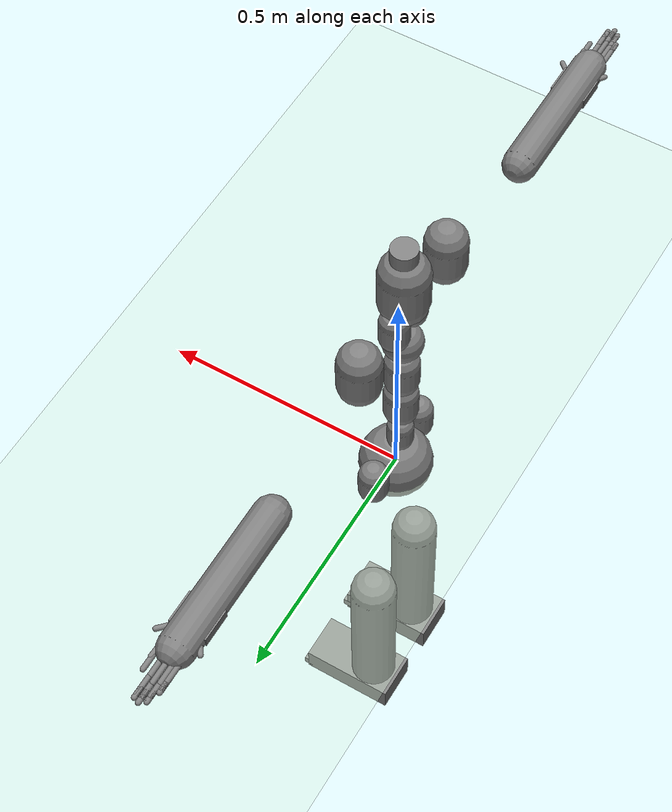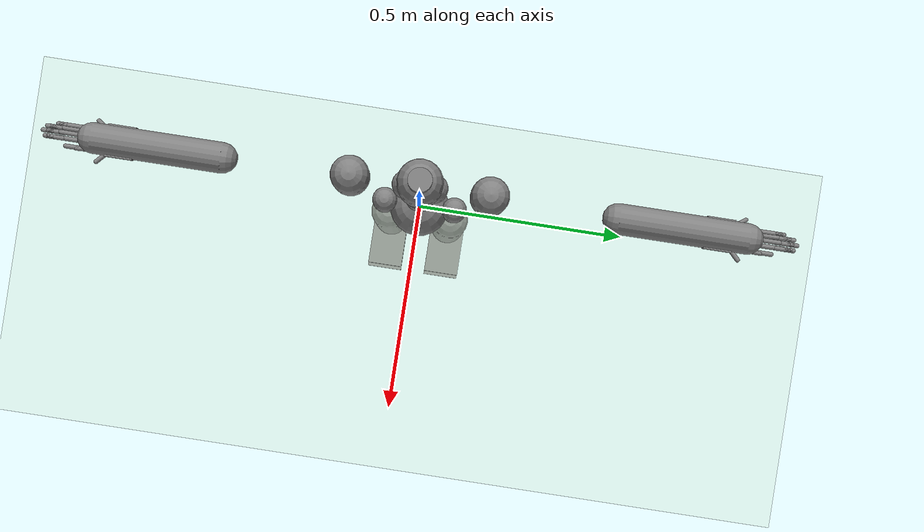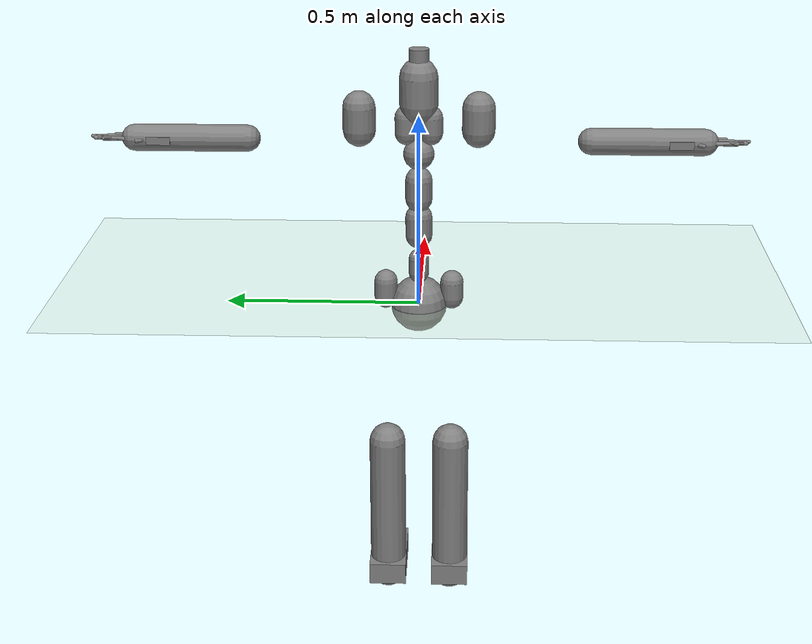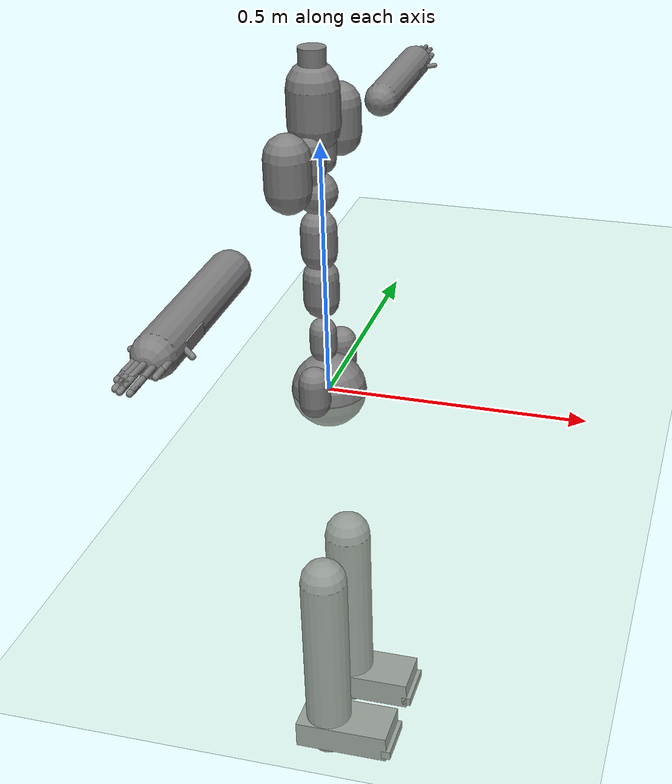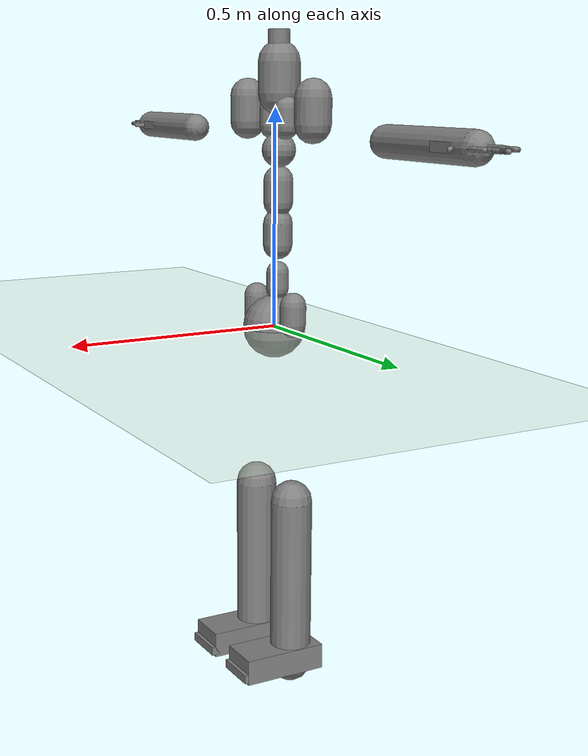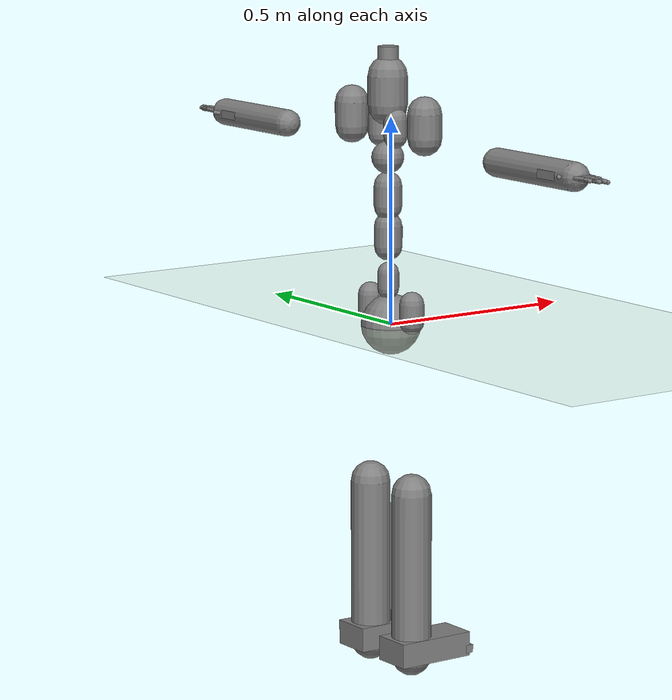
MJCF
<?xml version="1.0" ?>
<mujoco model="humanoid">
  <compiler coordinate="local"/>
  <statistic extent="2" center="0 0 1"/>
  <option timestep="0.00555"/>
  <default>
    <motor ctrlrange="-1 1" ctrllimited="true"/>
    <geom type="capsule" condim="1" friction="1.0 0.05 0.05" solimp=".9 .99 .003" solref=".015 1"/>
    <joint type="hinge" damping="0.1" stiffness="5" armature=".007" limited="true" solimplimit="0 .99 .01"/>
    <site size=".04" group="3"/>
  </default>
  <asset>
    <texture type="skybox" builtin="gradient" rgb1=".4 .5 .6" rgb2="0 0 0" width="100" height="100"/>
    <texture builtin="flat" height="1278" mark="cross" markrgb="1 1 1" name="texgeom" random="0.01" rgb1="0.8 0.6 0.4" rgb2="0.8 0.6 0.4" type="cube" width="127"/>
    <texture builtin="checker" height="100" name="texplane" rgb1="0 0 0" rgb2="0.8 0.8 0.8" type="2d" width="100"/>
    <material name="MatPlane" reflectance="0.5" shininess="1" specular="1" texrepeat="60 60" texture="texplane"/>
    <material name="geom" texture="texgeom" texuniform="true"/>
  </asset>
  <worldbody>
    <light cutoff="100" diffuse="1 1 1" dir="-0 0 -1.3" directional="true" exponent="1" pos="0 0 1.3" specular=".1 .1 .1"/>
    <geom conaffinity="1" condim="3" name="floor" pos="0 0 0" rgba="0.8 0.9 0.8 1" size="100 100 .2" type="plane" material="MatPlane"/>
    <body name="pHipOrigin" pos="0 0 0">
      <freejoint name="pHipOrigin"/>
      <geom type="sphere" contype="1" conaffinity="1" density="4629.6296296296305" size="0.07289" pos="0.0000 0.0000 -0.0000"/>
      <body name="jL5S1" pos="-0.00821389 0 0.07392483">
        <geom type="capsule" contype="1" conaffinity="1" density="1000" fromto="0 0 0.01488 0 0 0.05207" size="0.02603"/>
        <joint name="jL5S1_x" type="hinge" pos="0 0 0" axis="1 0 0" stiffness="500" damping="500" armature="0.02" range="-180.0000 180.0000"/>
        <joint name="jL5S1_y" type="hinge" pos="0 0 0" axis="0 1 0" stiffness="500" damping="500" armature="0.02" range="-180.0000 180.0000"/>
        <joint name="jL5S1_z" type="hinge" pos="0 0 0" axis="0 0 1" stiffness="500" damping="500" armature="0.02" range="-180.0000 180.0000"/>
        <body name="jL4L3" pos="0 0 0.09716501">
          <geom type="capsule" contype="1" conaffinity="1" density="1000" fromto="0 0 0.01943 0 0 0.06802" size="0.03401"/>
          <joint name="jL4L3_x" type="hinge" pos="0 0 0" axis="1 0 0" stiffness="500" damping="500" armature="0.02" range="-180.0000 180.0000"/>
          <joint name="jL4L3_y" type="hinge" pos="0 0 0" axis="0 1 0" stiffness="500" damping="500" armature="0.02" range="-180.0000 180.0000"/>
          <joint name="jL4L3_z" type="hinge" pos="0 0 0" axis="0 0 1" stiffness="500" damping="500" armature="0.02" range="-180.0000 180.0000"/>
          <body name="jL1T12" pos="-0.00075216 0 0.09749371">
            <geom type="capsule" contype="1" conaffinity="1" density="1000" fromto="0 0 0.01950 0 0 0.06825" size="0.03412"/>
            <joint name="jL1T12_x" type="hinge" pos="0 0 0" axis="1 0 0" stiffness="500" damping="500" armature="0.02" range="-180.0000 180.0000"/>
            <joint name="jL1T12_y" type="hinge" pos="0 0 0" axis="0 1 0" stiffness="500" damping="500" armature="0.02" range="-180.0000 180.0000"/>
            <joint name="jL1T12_z" type="hinge" pos="0 0 0" axis="0 0 1" stiffness="500" damping="500" armature="0.02" range="-180.0000 180.0000"/>
            <body name="jT9T8" pos="-0.00075378 0 0.09751337">
              <geom type="sphere" contype="1" conaffinity="1" density="1000" size="0.03901" pos="0.000 0.0000 0.039007"/>
              <joint name="jT9T8_x" type="hinge" pos="0 0 0" axis="1 0 0" stiffness="500" damping="500" armature="0.02" range="-180.0000 180.0000"/>
              <joint name="jT9T8_y" type="hinge" pos="0 0 0" axis="0 1 0" stiffness="500" damping="500" armature="0.02" range="-180.0000 180.0000"/>
              <joint name="jT9T8_z" type="hinge" pos="0 0 0" axis="0 0 1" stiffness="500" damping="500" armature="0.02" range="-180.0000 180.0000"/>
              <body name="jT1C7" pos="0 0 0.13721299">
                <geom type="capsule" contype="1" conaffinity="1" density="1000" fromto="0 0 0.02744 0 0 0.09605" size="0.04802"/>
                <joint name="jT1C7_x" type="hinge" pos="0 0 0" axis="1 0 0" stiffness="500" damping="500" armature="0.02" range="-180.0000 180.0000"/>
                <joint name="jT1C7_y" type="hinge" pos="0 0 0" axis="0 1 0" stiffness="500" damping="500" armature="0.02" range="-180.0000 180.0000"/>
                <joint name="jT1C7_z" type="hinge" pos="0 0 0" axis="0 0 1" stiffness="500" damping="500" armature="0.02" range="-180.0000 180.0000"/>
                <body name="jC1Head" pos="0.00098253 0 0.08328238">
                  <geom type="cylinder" contype="1" conaffinity="1" density="1000" fromto="0 0 0 0 0 0.08329" size="0.02499"/>
                  <joint name="jC1Head_x" type="hinge" pos="0 0 0" axis="1 0 0" stiffness="500" damping="500" armature="0.02" range="-180.0000 180.0000"/>
                  <joint name="jC1Head_y" type="hinge" pos="0 0 0" axis="0 1 0" stiffness="500" damping="500" armature="0.02" range="-180.0000 180.0000"/>
                  <joint name="jC1Head_z" type="hinge" pos="0 0 0" axis="0 0 1" stiffness="500" damping="500" armature="0.02" range="-180.0000 180.0000"/>
                </body>
              </body>
              <body name="jRightT4Shoulder" pos="0 -0.03105658 0.07572276">
                <geom type="capsule" contype="1" conaffinity="1" density="1000" fromto="0 0 0.01637 0 0 0.05729" size="0.02865"/>
                <joint name="jRightT4Shoulder_x" type="hinge" pos="0 0 0" axis="1 0 0" stiffness="500" damping="500" armature="0.02" range="-180.0000 180.0000"/>
                <joint name="jRightT4Shoulder_y" type="hinge" pos="0 0 0" axis="0 1 0" stiffness="500" damping="500" armature="0.02" range="-180.0000 180.0000"/>
                <joint name="jRightT4Shoulder_z" type="hinge" pos="0 0 0" axis="0 0 1" stiffness="500" damping="500" armature="0.02" range="-180.0000 180.0000"/>
                <body name="jRightShoulder" pos="0 -0.11724377 0">
                  <geom type="capsule" contype="1" conaffinity="1" density="1000" fromto="0 0 0.02345 0 0 0.08207" size="0.04104"/>
                  <joint name="jRightShoulder_x" type="hinge" pos="0 0 0" axis="1 0 0" stiffness="500" damping="500" armature="0.02" range="-180.0000 180.0000"/>
                  <joint name="jRightShoulder_y" type="hinge" pos="0 0 0" axis="0 1 0" stiffness="500" damping="500" armature="0.02" range="-180.0000 180.0000"/>
                  <joint name="jRightShoulder_z" type="hinge" pos="0 0 0" axis="0 0 1" stiffness="500" damping="500" armature="0.02" range="-180.0000 180.0000"/>
                  <body name="jRightElbow" pos="0 -0.27950010 0">
                    <geom type="capsule" contype="1" conaffinity="1" density="1000" fromto="0 0 0 0.00000000 -0.27950010 0.00000000" size="0.03354"/>
                    <joint name="jRightElbow_x" type="hinge" pos="0 0 0" axis="1 0 0" stiffness="500" damping="500" armature="0.02" range="-180.0000 180.0000"/>
                    <joint name="jRightElbow_y" type="hinge" pos="0 0 0" axis="0 1 0" stiffness="500" damping="500" armature="0.02" range="-180.0000 180.0000"/>
                    <joint name="jRightElbow_z" type="hinge" pos="0 0 0" axis="0 0 1" stiffness="500" damping="500" armature="0.02" range="-180.0000 180.0000"/>
                    <body name="jRightWrist" pos="0.00008815 -0.21901459 0">
                      <geom density="1000" type="box" pos="0 0 0" size="0.035 0.03 0.01" quat="1.0000 0.0000 0.0000 0.0000"/>
                      <joint name="jRightWrist_x" type="hinge" pos="0 0 0" axis="1 0 0" stiffness="500" damping="500" armature="0.02" range="-180.0000 180.0000"/>
                      <joint name="jRightWrist_y" type="hinge" pos="0 0 0" axis="0 1 0" stiffness="500" damping="500" armature="0.02" range="-180.0000 180.0000"/>
                      <joint name="jRightWrist_z" type="hinge" pos="0 0 0" axis="0 0 1" stiffness="500" damping="500" armature="0.02" range="-180.0000 180.0000"/>
                      <body name="jRightFirstCMC" pos="0.02454295 -0.02352580 -0.00111146">
                        <geom type="capsule" contype="1" conaffinity="1" density="1000" fromto="0 0 0 0.02454295 -0.02352580 -0.00111146" size="0.005"/>
                        <joint name="jRightFirstCMC_x" type="hinge" pos="0 0 0" axis="1 0 0" stiffness="500" damping="500" armature="0.02" range="-180.0000 180.0000"/>
                        <joint name="jRightFirstCMC_y" type="hinge" pos="0 0 0" axis="0 1 0" stiffness="500" damping="500" armature="0.02" range="-180.0000 180.0000"/>
                        <joint name="jRightFirstCMC_z" type="hinge" pos="0 0 0" axis="0 0 1" stiffness="500" damping="500" armature="0.02" range="-180.0000 180.0000"/>
                        <body name="jRightFirstMCP" pos="0.00122082 -0.03445062 0.00072794">
                          <geom type="capsule" contype="1" conaffinity="1" density="1000" fromto="0 0 0 0.00122082 -0.03445062 0.00072794" size="0.005"/>
                          <joint name="jRightFirstMCP_x" type="hinge" pos="0 0 0" axis="1 0 0" stiffness="500" damping="500" armature="0.02" range="-180.0000 180.0000"/>
                          <joint name="jRightFirstMCP_y" type="hinge" pos="0 0 0" axis="0 1 0" stiffness="500" damping="500" armature="0.02" range="-180.0000 180.0000"/>
                          <joint name="jRightFirstMCP_z" type="hinge" pos="0 0 0" axis="0 0 1" stiffness="500" damping="500" armature="0.02" range="-180.0000 180.0000"/>
                          <body name="jRightIP" pos="0 -0.02904952 0">
                            <geom type="capsule" contype="1" conaffinity="1" density="1000" fromto="0 0 0 0.00000000 -0.02904952 0.00000000" size="0.005"/>
                            <joint name="jRightIP_x" type="hinge" pos="0 0 0" axis="1 0 0" stiffness="500" damping="500" armature="0.02" range="-180.0000 180.0000"/>
                            <joint name="jRightIP_y" type="hinge" pos="0 0 0" axis="0 1 0" stiffness="500" damping="500" armature="0.02" range="-180.0000 180.0000"/>
                            <joint name="jRightIP_z" type="hinge" pos="0 0 0" axis="0 0 1" stiffness="500" damping="500" armature="0.02" range="-180.0000 180.0000"/>
                          </body>
                        </body>
                      </body>
                      <body name="jRightSecondCMC" pos="0.01048380 -0.03063035 -0.00053427">
                        <geom type="capsule" contype="1" conaffinity="1" density="1000" fromto="0 0 0 0.01048380 -0.03063035 -0.00053427" size="0.005"/>
                        <joint name="jRightSecondCMC_x" type="hinge" pos="0 0 0" axis="1 0 0" stiffness="500" damping="500" armature="0.02" range="-180.0000 180.0000"/>
                        <joint name="jRightSecondCMC_y" type="hinge" pos="0 0 0" axis="0 1 0" stiffness="500" damping="500" armature="0.02" range="-180.0000 180.0000"/>
                        <joint name="jRightSecondCMC_z" type="hinge" pos="0 0 0" axis="0 0 1" stiffness="500" damping="500" armature="0.02" range="-180.0000 180.0000"/>
                        <body name="jRightSecondMCP" pos="-0.00034946 -0.05573590 -0.00057817">
                          <geom type="capsule" contype="1" conaffinity="1" density="1000" fromto="0 0 0 -0.00034946 -0.05573590 -0.00057817" size="0.005"/>
                          <joint name="jRightSecondMCP_x" type="hinge" pos="0 0 0" axis="1 0 0" stiffness="500" damping="500" armature="0.02" range="-180.0000 180.0000"/>
                          <joint name="jRightSecondMCP_y" type="hinge" pos="0 0 0" axis="0 1 0" stiffness="500" damping="500" armature="0.02" range="-180.0000 180.0000"/>
                          <joint name="jRightSecondMCP_z" type="hinge" pos="0 0 0" axis="0 0 1" stiffness="500" damping="500" armature="0.02" range="-180.0000 180.0000"/>
                          <body name="jRightSecondPIP" pos="0 -0.03652401 0">
                            <geom type="capsule" contype="1" conaffinity="1" density="1000" fromto="0 0 0 0.00000000 -0.03652401 0.00000000" size="0.005"/>
                            <joint name="jRightSecondPIP_x" type="hinge" pos="0 0 0" axis="1 0 0" stiffness="500" damping="500" armature="0.02" range="-180.0000 180.0000"/>
                            <joint name="jRightSecondPIP_y" type="hinge" pos="0 0 0" axis="0 1 0" stiffness="500" damping="500" armature="0.02" range="-180.0000 180.0000"/>
                            <joint name="jRightSecondPIP_z" type="hinge" pos="0 0 0" axis="0 0 1" stiffness="500" damping="500" armature="0.02" range="-180.0000 180.0000"/>
                            <body name="jRightSecondDIP" pos="0 -0.01996541 0">
                              <geom type="capsule" contype="1" conaffinity="1" density="1000" fromto="0 0 0 0.00000000 -0.01996541 0.00000000" size="0.005"/>
                              <joint name="jRightSecondDIP_x" type="hinge" pos="0 0 0" axis="1 0 0" stiffness="500" damping="500" armature="0.02" range="-180.0000 180.0000"/>
                              <joint name="jRightSecondDIP_y" type="hinge" pos="0 0 0" axis="0 1 0" stiffness="500" damping="500" armature="0.02" range="-180.0000 180.0000"/>
                              <joint name="jRightSecondDIP_z" type="hinge" pos="0 0 0" axis="0 0 1" stiffness="500" damping="500" armature="0.02" range="-180.0000 180.0000"/>
                            </body>
                          </body>
                        </body>
                      </body>
                      <body name="jRightThirdCMC" pos="-0.00058834 -0.03181606 0.00133760">
                        <geom type="capsule" contype="1" conaffinity="1" density="1000" fromto="0 0 0 -0.00058834 -0.03181606 0.00133760" size="0.005"/>
                        <joint name="jRightThirdCMC_x" type="hinge" pos="0 0 0" axis="1 0 0" stiffness="500" damping="500" armature="0.02" range="-180.0000 180.0000"/>
                        <joint name="jRightThirdCMC_y" type="hinge" pos="0 0 0" axis="0 1 0" stiffness="500" damping="500" armature="0.02" range="-180.0000 180.0000"/>
                        <joint name="jRightThirdCMC_z" type="hinge" pos="0 0 0" axis="0 0 1" stiffness="500" damping="500" armature="0.02" range="-180.0000 180.0000"/>
                        <body name="jRightThirdMCP" pos="-0.00059091 -0.04895718 0.00133194">
                          <geom type="capsule" contype="1" conaffinity="1" density="1000" fromto="0 0 0 -0.00059091 -0.04895718 0.00133194" size="0.005"/>
                          <joint name="jRightThirdMCP_x" type="hinge" pos="0 0 0" axis="1 0 0" stiffness="500" damping="500" armature="0.02" range="-180.0000 180.0000"/>
                          <joint name="jRightThirdMCP_y" type="hinge" pos="0 0 0" axis="0 1 0" stiffness="500" damping="500" armature="0.02" range="-180.0000 180.0000"/>
                          <joint name="jRightThirdMCP_z" type="hinge" pos="0 0 0" axis="0 0 1" stiffness="500" damping="500" armature="0.02" range="-180.0000 180.0000"/>
                          <body name="jRightThirdPIP" pos="0 -0.03991027 0">
                            <geom type="capsule" contype="1" conaffinity="1" density="1000" fromto="0 0 0 0.00000000 -0.03991027 0.00000000" size="0.005"/>
                            <joint name="jRightThirdPIP_x" type="hinge" pos="0 0 0" axis="1 0 0" stiffness="500" damping="500" armature="0.02" range="-180.0000 180.0000"/>
                            <joint name="jRightThirdPIP_y" type="hinge" pos="0 0 0" axis="0 1 0" stiffness="500" damping="500" armature="0.02" range="-180.0000 180.0000"/>
                            <joint name="jRightThirdPIP_z" type="hinge" pos="0 0 0" axis="0 0 1" stiffness="500" damping="500" armature="0.02" range="-180.0000 180.0000"/>
                            <body name="jRightThirdDIP" pos="0 -0.02360356 0">
                              <geom type="capsule" contype="1" conaffinity="1" density="1000" fromto="0 0 0 0.00000000 -0.02360356 0.00000000" size="0.005"/>
                              <joint name="jRightThirdDIP_x" type="hinge" pos="0 0 0" axis="1 0 0" stiffness="500" damping="500" armature="0.02" range="-180.0000 180.0000"/>
                              <joint name="jRightThirdDIP_y" type="hinge" pos="0 0 0" axis="0 1 0" stiffness="500" damping="500" armature="0.02" range="-180.0000 180.0000"/>
                              <joint name="jRightThirdDIP_z" type="hinge" pos="0 0 0" axis="0 0 1" stiffness="500" damping="500" armature="0.02" range="-180.0000 180.0000"/>
                            </body>
                          </body>
                        </body>
                      </body>
                      <body name="jRightFourthCMC" pos="-0.01082247 -0.03014238 0.00070950">
                        <geom type="capsule" contype="1" conaffinity="1" density="1000" fromto="0 0 0 -0.01082247 -0.03014238 0.00070950" size="0.005"/>
                        <joint name="jRightFourthCMC_x" type="hinge" pos="0 0 0" axis="1 0 0" stiffness="500" damping="500" armature="0.02" range="-180.0000 180.0000"/>
                        <joint name="jRightFourthCMC_y" type="hinge" pos="0 0 0" axis="0 1 0" stiffness="500" damping="500" armature="0.02" range="-180.0000 180.0000"/>
                        <joint name="jRightFourthCMC_z" type="hinge" pos="0 0 0" axis="0 0 1" stiffness="500" damping="500" armature="0.02" range="-180.0000 180.0000"/>
                        <body name="jRightFourthMCP" pos="-0.00034513 -0.04730407 0.00074318">
                          <geom type="capsule" contype="1" conaffinity="1" density="1000" fromto="0 0 0 -0.00034513 -0.04730407 0.00074318" size="0.005"/>
                          <joint name="jRightFourthMCP_x" type="hinge" pos="0 0 0" axis="1 0 0" stiffness="500" damping="500" armature="0.02" range="-180.0000 180.0000"/>
                          <joint name="jRightFourthMCP_y" type="hinge" pos="0 0 0" axis="0 1 0" stiffness="500" damping="500" armature="0.02" range="-180.0000 180.0000"/>
                          <joint name="jRightFourthMCP_z" type="hinge" pos="0 0 0" axis="0 0 1" stiffness="500" damping="500" armature="0.02" range="-180.0000 180.0000"/>
                          <body name="jRightFourthPIP" pos="0 -0.03786907 0">
                            <geom type="capsule" contype="1" conaffinity="1" density="1000" fromto="0 0 0 0.00000000 -0.03786907 0.00000000" size="0.005"/>
                            <joint name="jRightFourthPIP_x" type="hinge" pos="0 0 0" axis="1 0 0" stiffness="500" damping="500" armature="0.02" range="-180.0000 180.0000"/>
                            <joint name="jRightFourthPIP_y" type="hinge" pos="0 0 0" axis="0 1 0" stiffness="500" damping="500" armature="0.02" range="-180.0000 180.0000"/>
                            <joint name="jRightFourthPIP_z" type="hinge" pos="0 0 0" axis="0 0 1" stiffness="500" damping="500" armature="0.02" range="-180.0000 180.0000"/>
                            <body name="jRightFourthDIP" pos="0 -0.02246115 0">
                              <geom type="capsule" contype="1" conaffinity="1" density="1000" fromto="0 0 0 0.00000000 -0.02246115 0.00000000" size="0.005"/>
                              <joint name="jRightFourthDIP_x" type="hinge" pos="0 0 0" axis="1 0 0" stiffness="500" damping="500" armature="0.02" range="-180.0000 180.0000"/>
                              <joint name="jRightFourthDIP_y" type="hinge" pos="0 0 0" axis="0 1 0" stiffness="500" damping="500" armature="0.02" range="-180.0000 180.0000"/>
                              <joint name="jRightFourthDIP_z" type="hinge" pos="0 0 0" axis="0 0 1" stiffness="500" damping="500" armature="0.02" range="-180.0000 180.0000"/>
                            </body>
                          </body>
                        </body>
                      </body>
                      <body name="jRightFifthCMC" pos="-0.01899454 -0.02646673 0.00052210">
                        <geom type="capsule" contype="1" conaffinity="1" density="1000" fromto="0 0 0 -0.01899454 -0.02646673 0.00052210" size="0.005"/>
                        <joint name="jRightFifthCMC_x" type="hinge" pos="0 0 0" axis="1 0 0" stiffness="500" damping="500" armature="0.02" range="-180.0000 180.0000"/>
                        <joint name="jRightFifthCMC_y" type="hinge" pos="0 0 0" axis="0 1 0" stiffness="500" damping="500" armature="0.02" range="-180.0000 180.0000"/>
                        <joint name="jRightFifthCMC_z" type="hinge" pos="0 0 0" axis="0 0 1" stiffness="500" damping="500" armature="0.02" range="-180.0000 180.0000"/>
                        <body name="jRightFifthMCP" pos="-0.00000665 -0.04504785 0.00061991">
                          <geom type="capsule" contype="1" conaffinity="1" density="1000" fromto="0 0 0 -0.00000665 -0.04504785 0.00061991" size="0.005"/>
                          <joint name="jRightFifthMCP_x" type="hinge" pos="0 0 0" axis="1 0 0" stiffness="500" damping="500" armature="0.02" range="-180.0000 180.0000"/>
                          <joint name="jRightFifthMCP_y" type="hinge" pos="0 0 0" axis="0 1 0" stiffness="500" damping="500" armature="0.02" range="-180.0000 180.0000"/>
                          <joint name="jRightFifthMCP_z" type="hinge" pos="0 0 0" axis="0 0 1" stiffness="500" damping="500" armature="0.02" range="-180.0000 180.0000"/>
                          <body name="jRightFifthPIP" pos="0 -0.03156321 0">
                            <geom type="capsule" contype="1" conaffinity="1" density="1000" fromto="0 0 0 0.00000000 -0.03156321 0.00000000" size="0.005"/>
                            <joint name="jRightFifthPIP_x" type="hinge" pos="0 0 0" axis="1 0 0" stiffness="500" damping="500" armature="0.02" range="-180.0000 180.0000"/>
                            <joint name="jRightFifthPIP_y" type="hinge" pos="0 0 0" axis="0 1 0" stiffness="500" damping="500" armature="0.02" range="-180.0000 180.0000"/>
                            <joint name="jRightFifthPIP_z" type="hinge" pos="0 0 0" axis="0 0 1" stiffness="500" damping="500" armature="0.02" range="-180.0000 180.0000"/>
                            <body name="jRightFifthDIP" pos="0 -0.01716164 0">
                              <geom type="capsule" contype="1" conaffinity="1" density="1000" fromto="0 0 0 0.00000000 -0.01716164 0.00000000" size="0.005"/>
                              <joint name="jRightFifthDIP_x" type="hinge" pos="0 0 0" axis="1 0 0" stiffness="500" damping="500" armature="0.02" range="-180.0000 180.0000"/>
                              <joint name="jRightFifthDIP_y" type="hinge" pos="0 0 0" axis="0 1 0" stiffness="500" damping="500" armature="0.02" range="-180.0000 180.0000"/>
                              <joint name="jRightFifthDIP_z" type="hinge" pos="0 0 0" axis="0 0 1" stiffness="500" damping="500" armature="0.02" range="-180.0000 180.0000"/>
                            </body>
                          </body>
                        </body>
                      </body>
                    </body>
                  </body>
                </body>
              </body>
              <body name="jLeftT4Shoulder" pos="0 0.03113930 0.07592445">
                <geom type="capsule" contype="1" conaffinity="1" density="1000" fromto="0 0 0.01641 0 0 0.05744" size="0.02872"/>
                <joint name="jLeftT4Shoulder_x" type="hinge" pos="0 0 0" axis="1 0 0" stiffness="500" damping="500" armature="0.02" range="-180.0000 180.0000"/>
                <joint name="jLeftT4Shoulder_y" type="hinge" pos="0 0 0" axis="0 1 0" stiffness="500" damping="500" armature="0.02" range="-180.0000 180.0000"/>
                <joint name="jLeftT4Shoulder_z" type="hinge" pos="0 0 0" axis="0 0 1" stiffness="500" damping="500" armature="0.02" range="-180.0000 180.0000"/>
                <body name="jLeftShoulder" pos="0 0.11686614 0">
                  <geom type="capsule" contype="1" conaffinity="1" density="1000" fromto="0 0 0.02337 0 0 0.08181" size="0.04090"/>
                  <joint name="jLeftShoulder_x" type="hinge" pos="0 0 0" axis="1 0 0" stiffness="500" damping="500" armature="0.02" range="-180.0000 180.0000"/>
                  <joint name="jLeftShoulder_y" type="hinge" pos="0 0 0" axis="0 1 0" stiffness="500" damping="500" armature="0.02" range="-180.0000 180.0000"/>
                  <joint name="jLeftShoulder_z" type="hinge" pos="0 0 0" axis="0 0 1" stiffness="500" damping="500" armature="0.02" range="-180.0000 180.0000"/>
                  <body name="jLeftElbow" pos="0 0.28011745 0">
                    <geom type="capsule" contype="1" conaffinity="1" density="1000" fromto="0 0 0 0.00000000 0.28011745 0.00000000" size="0.03361"/>
                    <joint name="jLeftElbow_x" type="hinge" pos="0 0 0" axis="1 0 0" stiffness="500" damping="500" armature="0.02" range="-180.0000 180.0000"/>
                    <joint name="jLeftElbow_y" type="hinge" pos="0 0 0" axis="0 1 0" stiffness="500" damping="500" armature="0.02" range="-180.0000 180.0000"/>
                    <joint name="jLeftElbow_z" type="hinge" pos="0 0 0" axis="0 0 1" stiffness="500" damping="500" armature="0.02" range="-180.0000 180.0000"/>
                    <body name="jLeftWrist" pos="0.00008785 0.21826949 0">
                      <geom density="1000" type="box" pos="0 0 0" size="0.035 0.03 0.01" quat="1.0000 0.0000 0.0000 0.0000"/>
                      <joint name="jLeftWrist_x" type="hinge" pos="0 0 0" axis="1 0 0" stiffness="500" damping="500" armature="0.02" range="-180.0000 180.0000"/>
                      <joint name="jLeftWrist_y" type="hinge" pos="0 0 0" axis="0 1 0" stiffness="500" damping="500" armature="0.02" range="-180.0000 180.0000"/>
                      <joint name="jLeftWrist_z" type="hinge" pos="0 0 0" axis="0 0 1" stiffness="500" damping="500" armature="0.02" range="-180.0000 180.0000"/>
                      <body name="jLeftFirstCMC" pos="0.02402177 0.02407850 -0.00107514">
                        <geom type="capsule" contype="1" conaffinity="1" density="1000" fromto="0 0 0 0.02402177 0.02407850 -0.00107514" size="0.005"/>
                        <joint name="jLeftFirstCMC_x" type="hinge" pos="0 0 0" axis="1 0 0" stiffness="500" damping="500" armature="0.02" range="-180.0000 180.0000"/>
                        <joint name="jLeftFirstCMC_y" type="hinge" pos="0 0 0" axis="0 1 0" stiffness="500" damping="500" armature="0.02" range="-180.0000 180.0000"/>
                        <joint name="jLeftFirstCMC_z" type="hinge" pos="0 0 0" axis="0 0 1" stiffness="500" damping="500" armature="0.02" range="-180.0000 180.0000"/>
                        <body name="jLeftFirstMCP" pos="0.00120906 0.03444984 0.00070940">
                          <geom type="capsule" contype="1" conaffinity="1" density="1000" fromto="0 0 0 0.00120906 0.03444984 0.00070940" size="0.005"/>
                          <joint name="jLeftFirstMCP_x" type="hinge" pos="0 0 0" axis="1 0 0" stiffness="500" damping="500" armature="0.02" range="-180.0000 180.0000"/>
                          <joint name="jLeftFirstMCP_y" type="hinge" pos="0 0 0" axis="0 1 0" stiffness="500" damping="500" armature="0.02" range="-180.0000 180.0000"/>
                          <joint name="jLeftFirstMCP_z" type="hinge" pos="0 0 0" axis="0 0 1" stiffness="500" damping="500" armature="0.02" range="-180.0000 180.0000"/>
                          <body name="jLeftIP" pos="0 0.02904952 0">
                            <geom type="capsule" contype="1" conaffinity="1" density="1000" fromto="0 0 0 0.00000000 0.02904952 0.00000000" size="0.005"/>
                            <joint name="jLeftIP_x" type="hinge" pos="0 0 0" axis="1 0 0" stiffness="500" damping="500" armature="0.02" range="-180.0000 180.0000"/>
                            <joint name="jLeftIP_y" type="hinge" pos="0 0 0" axis="0 1 0" stiffness="500" damping="500" armature="0.02" range="-180.0000 180.0000"/>
                            <joint name="jLeftIP_z" type="hinge" pos="0 0 0" axis="0 0 1" stiffness="500" damping="500" armature="0.02" range="-180.0000 180.0000"/>
                          </body>
                        </body>
                      </body>
                      <body name="jLeftSecondCMC" pos="0.01060456 0.03057399 -0.00053868">
                        <geom type="capsule" contype="1" conaffinity="1" density="1000" fromto="0 0 0 0.01060456 0.03057399 -0.00053868" size="0.005"/>
                        <joint name="jLeftSecondCMC_x" type="hinge" pos="0 0 0" axis="1 0 0" stiffness="500" damping="500" armature="0.02" range="-180.0000 180.0000"/>
                        <joint name="jLeftSecondCMC_y" type="hinge" pos="0 0 0" axis="0 1 0" stiffness="500" damping="500" armature="0.02" range="-180.0000 180.0000"/>
                        <joint name="jLeftSecondCMC_z" type="hinge" pos="0 0 0" axis="0 0 1" stiffness="500" damping="500" armature="0.02" range="-180.0000 180.0000"/>
                        <body name="jLeftSecondMCP" pos="-0.00030470 0.05573704 -0.00058531">
                          <geom type="capsule" contype="1" conaffinity="1" density="1000" fromto="0 0 0 -0.00030470 0.05573704 -0.00058531" size="0.005"/>
                          <joint name="jLeftSecondMCP_x" type="hinge" pos="0 0 0" axis="1 0 0" stiffness="500" damping="500" armature="0.02" range="-180.0000 180.0000"/>
                          <joint name="jLeftSecondMCP_y" type="hinge" pos="0 0 0" axis="0 1 0" stiffness="500" damping="500" armature="0.02" range="-180.0000 180.0000"/>
                          <joint name="jLeftSecondMCP_z" type="hinge" pos="0 0 0" axis="0 0 1" stiffness="500" damping="500" armature="0.02" range="-180.0000 180.0000"/>
                          <body name="jLeftSecondPIP" pos="0 0.03652401 0">
                            <geom type="capsule" contype="1" conaffinity="1" density="1000" fromto="0 0 0 0.00000000 0.03652401 0.00000000" size="0.005"/>
                            <joint name="jLeftSecondPIP_x" type="hinge" pos="0 0 0" axis="1 0 0" stiffness="500" damping="500" armature="0.02" range="-180.0000 180.0000"/>
                            <joint name="jLeftSecondPIP_y" type="hinge" pos="0 0 0" axis="0 1 0" stiffness="500" damping="500" armature="0.02" range="-180.0000 180.0000"/>
                            <joint name="jLeftSecondPIP_z" type="hinge" pos="0 0 0" axis="0 0 1" stiffness="500" damping="500" armature="0.02" range="-180.0000 180.0000"/>
                            <body name="jLeftSecondDIP" pos="0 0.01996541 0">
                              <geom type="capsule" contype="1" conaffinity="1" density="1000" fromto="0 0 0 0.00000000 0.01996541 0.00000000" size="0.005"/>
                              <joint name="jLeftSecondDIP_x" type="hinge" pos="0 0 0" axis="1 0 0" stiffness="500" damping="500" armature="0.02" range="-180.0000 180.0000"/>
                              <joint name="jLeftSecondDIP_y" type="hinge" pos="0 0 0" axis="0 1 0" stiffness="500" damping="500" armature="0.02" range="-180.0000 180.0000"/>
                              <joint name="jLeftSecondDIP_z" type="hinge" pos="0 0 0" axis="0 0 1" stiffness="500" damping="500" armature="0.02" range="-180.0000 180.0000"/>
                            </body>
                          </body>
                        </body>
                      </body>
                      <body name="jLeftThirdCMC" pos="-0.00059179 0.03181892 0.00129301">
                        <geom type="capsule" contype="1" conaffinity="1" density="1000" fromto="0 0 0 -0.00059179 0.03181892 0.00129301" size="0.005"/>
                        <joint name="jLeftThirdCMC_x" type="hinge" pos="0 0 0" axis="1 0 0" stiffness="500" damping="500" armature="0.02" range="-180.0000 180.0000"/>
                        <joint name="jLeftThirdCMC_y" type="hinge" pos="0 0 0" axis="0 1 0" stiffness="500" damping="500" armature="0.02" range="-180.0000 180.0000"/>
                        <joint name="jLeftThirdCMC_z" type="hinge" pos="0 0 0" axis="0 0 1" stiffness="500" damping="500" armature="0.02" range="-180.0000 180.0000"/>
                        <body name="jLeftThirdMCP" pos="-0.00059568 0.04895813 0.00130516">
                          <geom type="capsule" contype="1" conaffinity="1" density="1000" fromto="0 0 0 -0.00059568 0.04895813 0.00130516" size="0.005"/>
                          <joint name="jLeftThirdMCP_x" type="hinge" pos="0 0 0" axis="1 0 0" stiffness="500" damping="500" armature="0.02" range="-180.0000 180.0000"/>
                          <joint name="jLeftThirdMCP_y" type="hinge" pos="0 0 0" axis="0 1 0" stiffness="500" damping="500" armature="0.02" range="-180.0000 180.0000"/>
                          <joint name="jLeftThirdMCP_z" type="hinge" pos="0 0 0" axis="0 0 1" stiffness="500" damping="500" armature="0.02" range="-180.0000 180.0000"/>
                          <body name="jLeftThirdPIP" pos="0 0.03991027 0">
                            <geom type="capsule" contype="1" conaffinity="1" density="1000" fromto="0 0 0 0.00000000 0.03991027 0.00000000" size="0.005"/>
                            <joint name="jLeftThirdPIP_x" type="hinge" pos="0 0 0" axis="1 0 0" stiffness="500" damping="500" armature="0.02" range="-180.0000 180.0000"/>
                            <joint name="jLeftThirdPIP_y" type="hinge" pos="0 0 0" axis="0 1 0" stiffness="500" damping="500" armature="0.02" range="-180.0000 180.0000"/>
                            <joint name="jLeftThirdPIP_z" type="hinge" pos="0 0 0" axis="0 0 1" stiffness="500" damping="500" armature="0.02" range="-180.0000 180.0000"/>
                            <body name="jLeftThirdDIP" pos="0 0.02360356 0">
                              <geom type="capsule" contype="1" conaffinity="1" density="1000" fromto="0 0 0 0.00000000 0.02360356 0.00000000" size="0.005"/>
                              <joint name="jLeftThirdDIP_x" type="hinge" pos="0 0 0" axis="1 0 0" stiffness="500" damping="500" armature="0.02" range="-180.0000 180.0000"/>
                              <joint name="jLeftThirdDIP_y" type="hinge" pos="0 0 0" axis="0 1 0" stiffness="500" damping="500" armature="0.02" range="-180.0000 180.0000"/>
                              <joint name="jLeftThirdDIP_z" type="hinge" pos="0 0 0" axis="0 0 1" stiffness="500" damping="500" armature="0.02" range="-180.0000 180.0000"/>
                            </body>
                          </body>
                        </body>
                      </body>
                      <body name="jLeftFourthCMC" pos="-0.01121959 0.02998820 0.00075739">
                        <geom type="capsule" contype="1" conaffinity="1" density="1000" fromto="0 0 0 -0.01121959 0.02998820 0.00075739" size="0.005"/>
                        <joint name="jLeftFourthCMC_x" type="hinge" pos="0 0 0" axis="1 0 0" stiffness="500" damping="500" armature="0.02" range="-180.0000 180.0000"/>
                        <joint name="jLeftFourthCMC_y" type="hinge" pos="0 0 0" axis="0 1 0" stiffness="500" damping="500" armature="0.02" range="-180.0000 180.0000"/>
                        <joint name="jLeftFourthCMC_z" type="hinge" pos="0 0 0" axis="0 0 1" stiffness="500" damping="500" armature="0.02" range="-180.0000 180.0000"/>
                        <body name="jLeftFourthMCP" pos="-0.00037116 0.04730136 0.00078600">
                          <geom type="capsule" contype="1" conaffinity="1" density="1000" fromto="0 0 0 -0.00037116 0.04730136 0.00078600" size="0.005"/>
                          <joint name="jLeftFourthMCP_x" type="hinge" pos="0 0 0" axis="1 0 0" stiffness="500" damping="500" armature="0.02" range="-180.0000 180.0000"/>
                          <joint name="jLeftFourthMCP_y" type="hinge" pos="0 0 0" axis="0 1 0" stiffness="500" damping="500" armature="0.02" range="-180.0000 180.0000"/>
                          <joint name="jLeftFourthMCP_z" type="hinge" pos="0 0 0" axis="0 0 1" stiffness="500" damping="500" armature="0.02" range="-180.0000 180.0000"/>
                          <body name="jLeftFourthPIP" pos="0 0.03786907 0">
                            <geom type="capsule" contype="1" conaffinity="1" density="1000" fromto="0 0 0 0.00000000 0.03786907 0.00000000" size="0.005"/>
                            <joint name="jLeftFourthPIP_x" type="hinge" pos="0 0 0" axis="1 0 0" stiffness="500" damping="500" armature="0.02" range="-180.0000 180.0000"/>
                            <joint name="jLeftFourthPIP_y" type="hinge" pos="0 0 0" axis="0 1 0" stiffness="500" damping="500" armature="0.02" range="-180.0000 180.0000"/>
                            <joint name="jLeftFourthPIP_z" type="hinge" pos="0 0 0" axis="0 0 1" stiffness="500" damping="500" armature="0.02" range="-180.0000 180.0000"/>
                            <body name="jLeftFourthDIP" pos="0 0.02246115 0">
                              <geom type="capsule" contype="1" conaffinity="1" density="1000" fromto="0 0 0 0.00000000 0.02246115 0.00000000" size="0.005"/>
                              <joint name="jLeftFourthDIP_x" type="hinge" pos="0 0 0" axis="1 0 0" stiffness="500" damping="500" armature="0.02" range="-180.0000 180.0000"/>
                              <joint name="jLeftFourthDIP_y" type="hinge" pos="0 0 0" axis="0 1 0" stiffness="500" damping="500" armature="0.02" range="-180.0000 180.0000"/>
                              <joint name="jLeftFourthDIP_z" type="hinge" pos="0 0 0" axis="0 0 1" stiffness="500" damping="500" armature="0.02" range="-180.0000 180.0000"/>
                            </body>
                          </body>
                        </body>
                      </body>
                      <body name="jLeftFifthCMC" pos="-0.01956996 0.02604831 0.00053050">
                        <geom type="capsule" contype="1" conaffinity="1" density="1000" fromto="0 0 0 -0.01956996 0.02604831 0.00053050" size="0.005"/>
                        <joint name="jLeftFifthCMC_x" type="hinge" pos="0 0 0" axis="1 0 0" stiffness="500" damping="500" armature="0.02" range="-180.0000 180.0000"/>
                        <joint name="jLeftFifthCMC_y" type="hinge" pos="0 0 0" axis="0 1 0" stiffness="500" damping="500" armature="0.02" range="-180.0000 180.0000"/>
                        <joint name="jLeftFifthCMC_z" type="hinge" pos="0 0 0" axis="0 0 1" stiffness="500" damping="500" armature="0.02" range="-180.0000 180.0000"/>
                        <body name="jLeftFifthMCP" pos="-0.00001278 0.04504662 0.00064819">
                          <geom type="capsule" contype="1" conaffinity="1" density="1000" fromto="0 0 0 -0.00001278 0.04504662 0.00064819" size="0.005"/>
                          <joint name="jLeftFifthMCP_x" type="hinge" pos="0 0 0" axis="1 0 0" stiffness="500" damping="500" armature="0.02" range="-180.0000 180.0000"/>
                          <joint name="jLeftFifthMCP_y" type="hinge" pos="0 0 0" axis="0 1 0" stiffness="500" damping="500" armature="0.02" range="-180.0000 180.0000"/>
                          <joint name="jLeftFifthMCP_z" type="hinge" pos="0 0 0" axis="0 0 1" stiffness="500" damping="500" armature="0.02" range="-180.0000 180.0000"/>
                          <body name="jLeftFifthPIP" pos="0 0.03156321 0">
                            <geom type="capsule" contype="1" conaffinity="1" density="1000" fromto="0 0 0 0.00000000 0.03156321 0.00000000" size="0.005"/>
                            <joint name="jLeftFifthPIP_x" type="hinge" pos="0 0 0" axis="1 0 0" stiffness="500" damping="500" armature="0.02" range="-180.0000 180.0000"/>
                            <joint name="jLeftFifthPIP_y" type="hinge" pos="0 0 0" axis="0 1 0" stiffness="500" damping="500" armature="0.02" range="-180.0000 180.0000"/>
                            <joint name="jLeftFifthPIP_z" type="hinge" pos="0 0 0" axis="0 0 1" stiffness="500" damping="500" armature="0.02" range="-180.0000 180.0000"/>
                            <body name="jLeftFifthDIP" pos="0 0.01716164 0">
                              <geom type="capsule" contype="1" conaffinity="1" density="1000" fromto="0 0 0 0.00000000 0.01716164 0.00000000" size="0.005"/>
                              <joint name="jLeftFifthDIP_x" type="hinge" pos="0 0 0" axis="1 0 0" stiffness="500" damping="500" armature="0.02" range="-180.0000 180.0000"/>
                              <joint name="jLeftFifthDIP_y" type="hinge" pos="0 0 0" axis="0 1 0" stiffness="500" damping="500" armature="0.02" range="-180.0000 180.0000"/>
                              <joint name="jLeftFifthDIP_z" type="hinge" pos="0 0 0" axis="0 0 1" stiffness="500" damping="500" armature="0.02" range="-180.0000 180.0000"/>
                            </body>
                          </body>
                        </body>
                      </body>
                    </body>
                  </body>
                </body>
              </body>
            </body>
          </body>
        </body>
      </body>
      <body name="jRightHip" pos="-0.00014358 -0.08520933 0.00129260">
        <geom type="capsule" contype="1" conaffinity="1" density="1000" fromto="0 0 0.01704 0 0 0.05965" size="0.02983"/>
        <joint name="jRightHip_x" type="hinge" pos="0 0 0" axis="1 0 0" stiffness="500" damping="500" armature="0.02" range="-180.0000 180.0000"/>
        <joint name="jRightHip_y" type="hinge" pos="0 0 0" axis="0 1 0" stiffness="500" damping="500" armature="0.02" range="-180.0000 180.0000"/>
        <joint name="jRightHip_z" type="hinge" pos="0 0 0" axis="0 0 1" stiffness="500" damping="500" armature="0.02" range="-180.0000 180.0000"/>
        <body name="jRightKnee" pos="0.00004828 0 -0.40492394">
          <geom type="capsule" contype="1" conaffinity="1" density="1000" fromto="0 0 0 0.00004828 0.00000000 -0.40492394" size="0.04859"/>
          <joint name="jRightKnee_x" type="hinge" pos="0 0 0" axis="1 0 0" stiffness="500" damping="500" armature="0.02" range="-180.0000 180.0000"/>
          <joint name="jRightKnee_y" type="hinge" pos="0 0 0" axis="0 1 0" stiffness="500" damping="500" armature="0.02" range="-180.0000 180.0000"/>
          <joint name="jRightKnee_z" type="hinge" pos="0 0 0" axis="0 0 1" stiffness="500" damping="500" armature="0.02" range="-180.0000 180.0000"/>
          <body name="jRightAnkle" pos="0.00040317 0 -0.35705471">
            <geom density="1000" type="box" pos="0.04 0. -0.03" size="0.1 0.05 0.03" quat="1.0 0 0 0"/>
            <joint name="jRightAnkle_x" type="hinge" pos="0 0 0" axis="1 0 0" stiffness="500" damping="500" armature="0.02" range="-180.0000 180.0000"/>
            <joint name="jRightAnkle_y" type="hinge" pos="0 0 0" axis="0 1 0" stiffness="500" damping="500" armature="0.02" range="-180.0000 180.0000"/>
            <joint name="jRightAnkle_z" type="hinge" pos="0 0 0" axis="0 0 1" stiffness="500" damping="500" armature="0.02" range="-180.0000 180.0000"/>
            <body name="jRightBallFoot" pos="0.13936356 0 -0.06393457">
              <geom density="1000" type="box" pos="0 0 0.02" size="0.01 0.05 0.01" quat="1.0 0 0 0"/>
              <joint name="jRightBallFoot_x" type="hinge" pos="0 0 0" axis="1 0 0" stiffness="500" damping="500" armature="0.02" range="-180.0000 180.0000"/>
              <joint name="jRightBallFoot_y" type="hinge" pos="0 0 0" axis="0 1 0" stiffness="500" damping="500" armature="0.02" range="-180.0000 180.0000"/>
              <joint name="jRightBallFoot_z" type="hinge" pos="0 0 0" axis="0 0 1" stiffness="500" damping="500" armature="0.02" range="-180.0000 180.0000"/>
            </body>
          </body>
        </body>
      </body>
      <body name="jLeftHip" pos="-0.00014214 0.08545246 0.00127914">
        <geom type="capsule" contype="1" conaffinity="1" density="1000" fromto="0 0 0.01709 0 0 0.05982" size="0.02991"/>
        <joint name="jLeftHip_x" type="hinge" pos="0 0 0" axis="1 0 0" stiffness="500" damping="500" armature="0.02" range="-180.0000 180.0000"/>
        <joint name="jLeftHip_y" type="hinge" pos="0 0 0" axis="0 1 0" stiffness="500" damping="500" armature="0.02" range="-180.0000 180.0000"/>
        <joint name="jLeftHip_z" type="hinge" pos="0 0 0" axis="0 0 1" stiffness="500" damping="500" armature="0.02" range="-180.0000 180.0000"/>
        <body name="jLeftKnee" pos="0.00004824 0 -0.40457600">
          <geom type="capsule" contype="1" conaffinity="1" density="1000" fromto="0 0 0 0.00004824 0.00000000 -0.40457600" size="0.04855"/>
          <joint name="jLeftKnee_x" type="hinge" pos="0 0 0" axis="1 0 0" stiffness="500" damping="500" armature="0.02" range="-180.0000 180.0000"/>
          <joint name="jLeftKnee_y" type="hinge" pos="0 0 0" axis="0 1 0" stiffness="500" damping="500" armature="0.02" range="-180.0000 180.0000"/>
          <joint name="jLeftKnee_z" type="hinge" pos="0 0 0" axis="0 0 1" stiffness="500" damping="500" armature="0.02" range="-180.0000 180.0000"/>
          <body name="jLeftAnkle" pos="0.00040317 0 -0.35705474">
            <geom density="1000" type="box" pos="0.04 0. -0.03" size="0.1 0.05 0.03" quat="1.0 0 0 0"/>
            <joint name="jLeftAnkle_x" type="hinge" pos="0 0 0" axis="1 0 0" stiffness="500" damping="500" armature="0.02" range="-180.0000 180.0000"/>
            <joint name="jLeftAnkle_y" type="hinge" pos="0 0 0" axis="0 1 0" stiffness="500" damping="500" armature="0.02" range="-180.0000 180.0000"/>
            <joint name="jLeftAnkle_z" type="hinge" pos="0 0 0" axis="0 0 1" stiffness="500" damping="500" armature="0.02" range="-180.0000 180.0000"/>
            <body name="jLeftBallFoot" pos="0.13936355 0 -0.06393457">
              <geom density="1000" type="box" pos="0 0 0.02" size="0.01 0.05 0.01" quat="1.0 0 0 0"/>
              <joint name="jLeftBallFoot_x" type="hinge" pos="0 0 0" axis="1 0 0" stiffness="500" damping="500" armature="0.02" range="-180.0000 180.0000"/>
              <joint name="jLeftBallFoot_y" type="hinge" pos="0 0 0" axis="0 1 0" stiffness="500" damping="500" armature="0.02" range="-180.0000 180.0000"/>
              <joint name="jLeftBallFoot_z" type="hinge" pos="0 0 0" axis="0 0 1" stiffness="500" damping="500" armature="0.02" range="-180.0000 180.0000"/>
            </body>
          </body>
        </body>
      </body>
    </body>
  </worldbody>
  <actuator>
    <motor name="jL5S1_x" joint="jL5S1_x" gear="500"/>
    <motor name="jL5S1_y" joint="jL5S1_y" gear="500"/>
    <motor name="jL5S1_z" joint="jL5S1_z" gear="500"/>
    <motor name="jL4L3_x" joint="jL4L3_x" gear="500"/>
    <motor name="jL4L3_y" joint="jL4L3_y" gear="500"/>
    <motor name="jL4L3_z" joint="jL4L3_z" gear="500"/>
    <motor name="jL1T12_x" joint="jL1T12_x" gear="500"/>
    <motor name="jL1T12_y" joint="jL1T12_y" gear="500"/>
    <motor name="jL1T12_z" joint="jL1T12_z" gear="500"/>
    <motor name="jT9T8_x" joint="jT9T8_x" gear="500"/>
    <motor name="jT9T8_y" joint="jT9T8_y" gear="500"/>
    <motor name="jT9T8_z" joint="jT9T8_z" gear="500"/>
    <motor name="jT1C7_x" joint="jT1C7_x" gear="500"/>
    <motor name="jT1C7_y" joint="jT1C7_y" gear="500"/>
    <motor name="jT1C7_z" joint="jT1C7_z" gear="500"/>
    <motor name="jC1Head_x" joint="jC1Head_x" gear="500"/>
    <motor name="jC1Head_y" joint="jC1Head_y" gear="500"/>
    <motor name="jC1Head_z" joint="jC1Head_z" gear="500"/>
    <motor name="jRightT4Shoulder_x" joint="jRightT4Shoulder_x" gear="500"/>
    <motor name="jRightT4Shoulder_y" joint="jRightT4Shoulder_y" gear="500"/>
    <motor name="jRightT4Shoulder_z" joint="jRightT4Shoulder_z" gear="500"/>
    <motor name="jRightShoulder_x" joint="jRightShoulder_x" gear="500"/>
    <motor name="jRightShoulder_y" joint="jRightShoulder_y" gear="500"/>
    <motor name="jRightShoulder_z" joint="jRightShoulder_z" gear="500"/>
    <motor name="jRightElbow_x" joint="jRightElbow_x" gear="500"/>
    <motor name="jRightElbow_y" joint="jRightElbow_y" gear="500"/>
    <motor name="jRightElbow_z" joint="jRightElbow_z" gear="500"/>
    <motor name="jRightWrist_x" joint="jRightWrist_x" gear="500"/>
    <motor name="jRightWrist_y" joint="jRightWrist_y" gear="500"/>
    <motor name="jRightWrist_z" joint="jRightWrist_z" gear="500"/>
    <motor name="jLeftT4Shoulder_x" joint="jLeftT4Shoulder_x" gear="500"/>
    <motor name="jLeftT4Shoulder_y" joint="jLeftT4Shoulder_y" gear="500"/>
    <motor name="jLeftT4Shoulder_z" joint="jLeftT4Shoulder_z" gear="500"/>
    <motor name="jLeftShoulder_x" joint="jLeftShoulder_x" gear="500"/>
    <motor name="jLeftShoulder_y" joint="jLeftShoulder_y" gear="500"/>
    <motor name="jLeftShoulder_z" joint="jLeftShoulder_z" gear="500"/>
    <motor name="jLeftElbow_x" joint="jLeftElbow_x" gear="500"/>
    <motor name="jLeftElbow_y" joint="jLeftElbow_y" gear="500"/>
    <motor name="jLeftElbow_z" joint="jLeftElbow_z" gear="500"/>
    <motor name="jLeftWrist_x" joint="jLeftWrist_x" gear="500"/>
    <motor name="jLeftWrist_y" joint="jLeftWrist_y" gear="500"/>
    <motor name="jLeftWrist_z" joint="jLeftWrist_z" gear="500"/>
    <motor name="jRightHip_x" joint="jRightHip_x" gear="500"/>
    <motor name="jRightHip_y" joint="jRightHip_y" gear="500"/>
    <motor name="jRightHip_z" joint="jRightHip_z" gear="500"/>
    <motor name="jRightKnee_x" joint="jRightKnee_x" gear="500"/>
    <motor name="jRightKnee_y" joint="jRightKnee_y" gear="500"/>
    <motor name="jRightKnee_z" joint="jRightKnee_z" gear="500"/>
    <motor name="jRightAnkle_x" joint="jRightAnkle_x" gear="500"/>
    <motor name="jRightAnkle_y" joint="jRightAnkle_y" gear="500"/>
    <motor name="jRightAnkle_z" joint="jRightAnkle_z" gear="500"/>
    <motor name="jRightBallFoot_x" joint="jRightBallFoot_x" gear="500"/>
    <motor name="jRightBallFoot_y" joint="jRightBallFoot_y" gear="500"/>
    <motor name="jRightBallFoot_z" joint="jRightBallFoot_z" gear="500"/>
    <motor name="jLeftHip_x" joint="jLeftHip_x" gear="500"/>
    <motor name="jLeftHip_y" joint="jLeftHip_y" gear="500"/>
    <motor name="jLeftHip_z" joint="jLeftHip_z" gear="500"/>
    <motor name="jLeftKnee_x" joint="jLeftKnee_x" gear="500"/>
    <motor name="jLeftKnee_y" joint="jLeftKnee_y" gear="500"/>
    <motor name="jLeftKnee_z" joint="jLeftKnee_z" gear="500"/>
    <motor name="jLeftAnkle_x" joint="jLeftAnkle_x" gear="500"/>
    <motor name="jLeftAnkle_y" joint="jLeftAnkle_y" gear="500"/>
    <motor name="jLeftAnkle_z" joint="jLeftAnkle_z" gear="500"/>
    <motor name="jLeftBallFoot_x" joint="jLeftBallFoot_x" gear="500"/>
    <motor name="jLeftBallFoot_y" joint="jLeftBallFoot_y" gear="500"/>
    <motor name="jLeftBallFoot_z" joint="jLeftBallFoot_z" gear="500"/>
    <motor name="jLeftFirstCMC_x" joint="jLeftFirstCMC_x" gear="500"/>
    <motor name="jLeftFirstCMC_y" joint="jLeftFirstCMC_y" gear="500"/>
    <motor name="jLeftFirstCMC_z" joint="jLeftFirstCMC_z" gear="500"/>
    <motor name="jLeftFirstMCP_x" joint="jLeftFirstMCP_x" gear="500"/>
    <motor name="jLeftFirstMCP_y" joint="jLeftFirstMCP_y" gear="500"/>
    <motor name="jLeftFirstMCP_z" joint="jLeftFirstMCP_z" gear="500"/>
    <motor name="jLeftIP_x" joint="jLeftIP_x" gear="500"/>
    <motor name="jLeftIP_y" joint="jLeftIP_y" gear="500"/>
    <motor name="jLeftIP_z" joint="jLeftIP_z" gear="500"/>
    <motor name="jLeftSecondCMC_x" joint="jLeftSecondCMC_x" gear="500"/>
    <motor name="jLeftSecondCMC_y" joint="jLeftSecondCMC_y" gear="500"/>
    <motor name="jLeftSecondCMC_z" joint="jLeftSecondCMC_z" gear="500"/>
    <motor name="jLeftSecondMCP_x" joint="jLeftSecondMCP_x" gear="500"/>
    <motor name="jLeftSecondMCP_y" joint="jLeftSecondMCP_y" gear="500"/>
    <motor name="jLeftSecondMCP_z" joint="jLeftSecondMCP_z" gear="500"/>
    <motor name="jLeftSecondPIP_x" joint="jLeftSecondPIP_x" gear="500"/>
    <motor name="jLeftSecondPIP_y" joint="jLeftSecondPIP_y" gear="500"/>
    <motor name="jLeftSecondPIP_z" joint="jLeftSecondPIP_z" gear="500"/>
    <motor name="jLeftSecondDIP_x" joint="jLeftSecondDIP_x" gear="500"/>
    <motor name="jLeftSecondDIP_y" joint="jLeftSecondDIP_y" gear="500"/>
    <motor name="jLeftSecondDIP_z" joint="jLeftSecondDIP_z" gear="500"/>
    <motor name="jLeftThirdCMC_x" joint="jLeftThirdCMC_x" gear="500"/>
    <motor name="jLeftThirdCMC_y" joint="jLeftThirdCMC_y" gear="500"/>
    <motor name="jLeftThirdCMC_z" joint="jLeftThirdCMC_z" gear="500"/>
    <motor name="jLeftThirdMCP_x" joint="jLeftThirdMCP_x" gear="500"/>
    <motor name="jLeftThirdMCP_y" joint="jLeftThirdMCP_y" gear="500"/>
    <motor name="jLeftThirdMCP_z" joint="jLeftThirdMCP_z" gear="500"/>
    <motor name="jLeftThirdPIP_x" joint="jLeftThirdPIP_x" gear="500"/>
    <motor name="jLeftThirdPIP_y" joint="jLeftThirdPIP_y" gear="500"/>
    <motor name="jLeftThirdPIP_z" joint="jLeftThirdPIP_z" gear="500"/>
    <motor name="jLeftThirdDIP_x" joint="jLeftThirdDIP_x" gear="500"/>
    <motor name="jLeftThirdDIP_y" joint="jLeftThirdDIP_y" gear="500"/>
    <motor name="jLeftThirdDIP_z" joint="jLeftThirdDIP_z" gear="500"/>
    <motor name="jLeftFourthCMC_x" joint="jLeftFourthCMC_x" gear="500"/>
    <motor name="jLeftFourthCMC_y" joint="jLeftFourthCMC_y" gear="500"/>
    <motor name="jLeftFourthCMC_z" joint="jLeftFourthCMC_z" gear="500"/>
    <motor name="jLeftFourthMCP_x" joint="jLeftFourthMCP_x" gear="500"/>
    <motor name="jLeftFourthMCP_y" joint="jLeftFourthMCP_y" gear="500"/>
    <motor name="jLeftFourthMCP_z" joint="jLeftFourthMCP_z" gear="500"/>
    <motor name="jLeftFourthPIP_x" joint="jLeftFourthPIP_x" gear="500"/>
    <motor name="jLeftFourthPIP_y" joint="jLeftFourthPIP_y" gear="500"/>
    <motor name="jLeftFourthPIP_z" joint="jLeftFourthPIP_z" gear="500"/>
    <motor name="jLeftFourthDIP_x" joint="jLeftFourthDIP_x" gear="500"/>
    <motor name="jLeftFourthDIP_y" joint="jLeftFourthDIP_y" gear="500"/>
    <motor name="jLeftFourthDIP_z" joint="jLeftFourthDIP_z" gear="500"/>
    <motor name="jLeftFifthCMC_x" joint="jLeftFifthCMC_x" gear="500"/>
    <motor name="jLeftFifthCMC_y" joint="jLeftFifthCMC_y" gear="500"/>
    <motor name="jLeftFifthCMC_z" joint="jLeftFifthCMC_z" gear="500"/>
    <motor name="jLeftFifthMCP_x" joint="jLeftFifthMCP_x" gear="500"/>
    <motor name="jLeftFifthMCP_y" joint="jLeftFifthMCP_y" gear="500"/>
    <motor name="jLeftFifthMCP_z" joint="jLeftFifthMCP_z" gear="500"/>
    <motor name="jLeftFifthPIP_x" joint="jLeftFifthPIP_x" gear="500"/>
    <motor name="jLeftFifthPIP_y" joint="jLeftFifthPIP_y" gear="500"/>
    <motor name="jLeftFifthPIP_z" joint="jLeftFifthPIP_z" gear="500"/>
    <motor name="jLeftFifthDIP_x" joint="jLeftFifthDIP_x" gear="500"/>
    <motor name="jLeftFifthDIP_y" joint="jLeftFifthDIP_y" gear="500"/>
    <motor name="jLeftFifthDIP_z" joint="jLeftFifthDIP_z" gear="500"/>
    <motor name="jRightFirstCMC_x" joint="jRightFirstCMC_x" gear="500"/>
    <motor name="jRightFirstCMC_y" joint="jRightFirstCMC_y" gear="500"/>
    <motor name="jRightFirstCMC_z" joint="jRightFirstCMC_z" gear="500"/>
    <motor name="jRightFirstMCP_x" joint="jRightFirstMCP_x" gear="500"/>
    <motor name="jRightFirstMCP_y" joint="jRightFirstMCP_y" gear="500"/>
    <motor name="jRightFirstMCP_z" joint="jRightFirstMCP_z" gear="500"/>
    <motor name="jRightIP_x" joint="jRightIP_x" gear="500"/>
    <motor name="jRightIP_y" joint="jRightIP_y" gear="500"/>
    <motor name="jRightIP_z" joint="jRightIP_z" gear="500"/>
    <motor name="jRightSecondCMC_x" joint="jRightSecondCMC_x" gear="500"/>
    <motor name="jRightSecondCMC_y" joint="jRightSecondCMC_y" gear="500"/>
    <motor name="jRightSecondCMC_z" joint="jRightSecondCMC_z" gear="500"/>
    <motor name="jRightSecondMCP_x" joint="jRightSecondMCP_x" gear="500"/>
    <motor name="jRightSecondMCP_y" joint="jRightSecondMCP_y" gear="500"/>
    <motor name="jRightSecondMCP_z" joint="jRightSecondMCP_z" gear="500"/>
    <motor name="jRightSecondPIP_x" joint="jRightSecondPIP_x" gear="500"/>
    <motor name="jRightSecondPIP_y" joint="jRightSecondPIP_y" gear="500"/>
    <motor name="jRightSecondPIP_z" joint="jRightSecondPIP_z" gear="500"/>
    <motor name="jRightSecondDIP_x" joint="jRightSecondDIP_x" gear="500"/>
    <motor name="jRightSecondDIP_y" joint="jRightSecondDIP_y" gear="500"/>
    <motor name="jRightSecondDIP_z" joint="jRightSecondDIP_z" gear="500"/>
    <motor name="jRightThirdCMC_x" joint="jRightThirdCMC_x" gear="500"/>
    <motor name="jRightThirdCMC_y" joint="jRightThirdCMC_y" gear="500"/>
    <motor name="jRightThirdCMC_z" joint="jRightThirdCMC_z" gear="500"/>
    <motor name="jRightThirdMCP_x" joint="jRightThirdMCP_x" gear="500"/>
    <motor name="jRightThirdMCP_y" joint="jRightThirdMCP_y" gear="500"/>
    <motor name="jRightThirdMCP_z" joint="jRightThirdMCP_z" gear="500"/>
    <motor name="jRightThirdPIP_x" joint="jRightThirdPIP_x" gear="500"/>
    <motor name="jRightThirdPIP_y" joint="jRightThirdPIP_y" gear="500"/>
    <motor name="jRightThirdPIP_z" joint="jRightThirdPIP_z" gear="500"/>
    <motor name="jRightThirdDIP_x" joint="jRightThirdDIP_x" gear="500"/>
    <motor name="jRightThirdDIP_y" joint="jRightThirdDIP_y" gear="500"/>
    <motor name="jRightThirdDIP_z" joint="jRightThirdDIP_z" gear="500"/>
    <motor name="jRightFourthCMC_x" joint="jRightFourthCMC_x" gear="500"/>
    <motor name="jRightFourthCMC_y" joint="jRightFourthCMC_y" gear="500"/>
    <motor name="jRightFourthCMC_z" joint="jRightFourthCMC_z" gear="500"/>
    <motor name="jRightFourthMCP_x" joint="jRightFourthMCP_x" gear="500"/>
    <motor name="jRightFourthMCP_y" joint="jRightFourthMCP_y" gear="500"/>
    <motor name="jRightFourthMCP_z" joint="jRightFourthMCP_z" gear="500"/>
    <motor name="jRightFourthPIP_x" joint="jRightFourthPIP_x" gear="500"/>
    <motor name="jRightFourthPIP_y" joint="jRightFourthPIP_y" gear="500"/>
    <motor name="jRightFourthPIP_z" joint="jRightFourthPIP_z" gear="500"/>
    <motor name="jRightFourthDIP_x" joint="jRightFourthDIP_x" gear="500"/>
    <motor name="jRightFourthDIP_y" joint="jRightFourthDIP_y" gear="500"/>
    <motor name="jRightFourthDIP_z" joint="jRightFourthDIP_z" gear="500"/>
    <motor name="jRightFifthCMC_x" joint="jRightFifthCMC_x" gear="500"/>
    <motor name="jRightFifthCMC_y" joint="jRightFifthCMC_y" gear="500"/>
    <motor name="jRightFifthCMC_z" joint="jRightFifthCMC_z" gear="500"/>
    <motor name="jRightFifthMCP_x" joint="jRightFifthMCP_x" gear="500"/>
    <motor name="jRightFifthMCP_y" joint="jRightFifthMCP_y" gear="500"/>
    <motor name="jRightFifthMCP_z" joint="jRightFifthMCP_z" gear="500"/>
    <motor name="jRightFifthPIP_x" joint="jRightFifthPIP_x" gear="500"/>
    <motor name="jRightFifthPIP_y" joint="jRightFifthPIP_y" gear="500"/>
    <motor name="jRightFifthPIP_z" joint="jRightFifthPIP_z" gear="500"/>
    <motor name="jRightFifthDIP_x" joint="jRightFifthDIP_x" gear="500"/>
    <motor name="jRightFifthDIP_y" joint="jRightFifthDIP_y" gear="500"/>
    <motor name="jRightFifthDIP_z" joint="jRightFifthDIP_z" gear="500"/>
  </actuator>
</mujoco>
